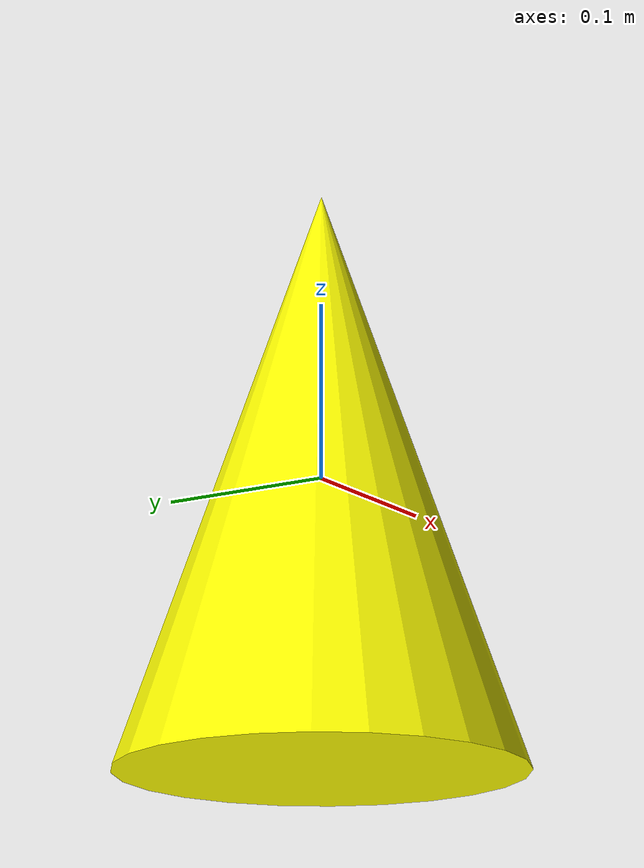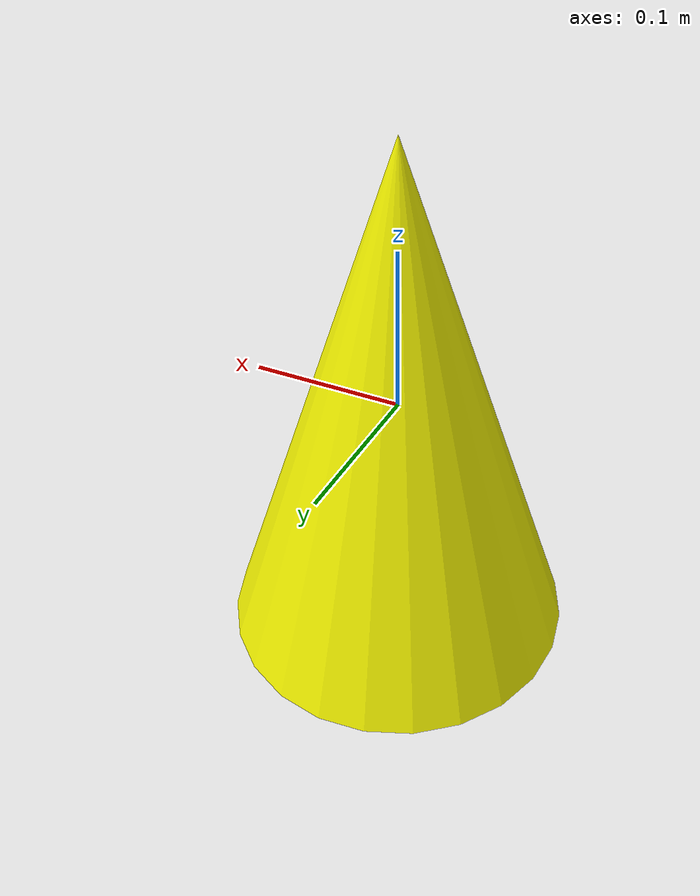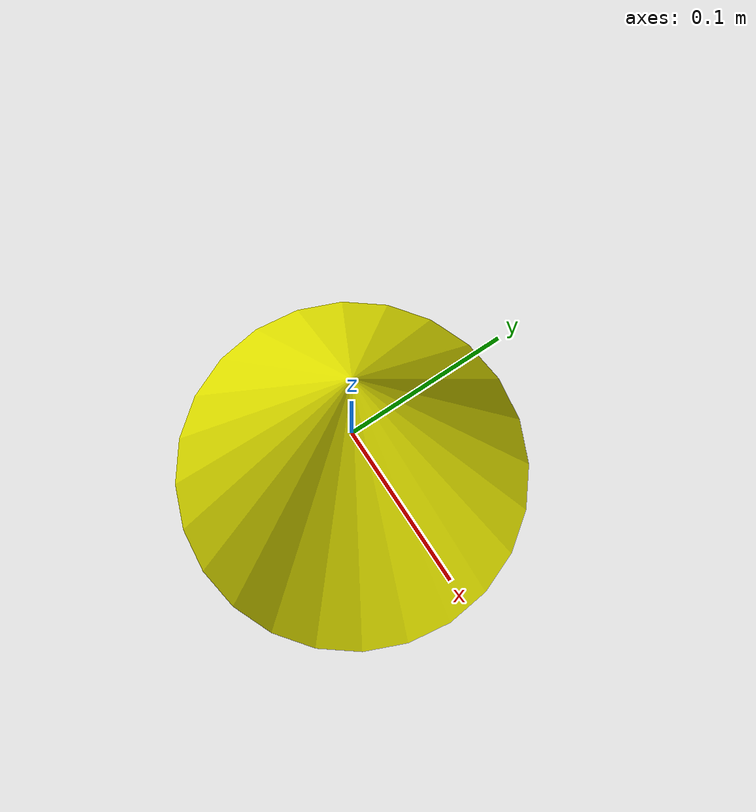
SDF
<?xml version="1.0" ?>
<sdf version="1.9">
  <model name="cone_yellow">
    <static>true</static>
    <link name="link">
      <!-- collision disabled for tuning -->
      <visual name="visual">
        <pose>0 0 -0.1625 0 0 0</pose>
        <geometry>
          <mesh>
            <uri>model://cone_yellow/meshes/cone.stl</uri>
          </mesh>
        </geometry>
        <material>
          <ambient>1.0 1.0 0.0 1</ambient>
          <diffuse>1.0 1.0 0.0 1</diffuse>
          <specular>0.1 0.1 0.1 1</specular>
        </material>
      </visual>
    </link>
  </model>
</sdf>
